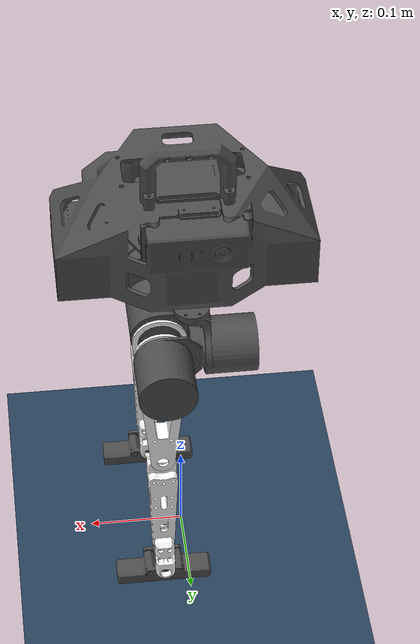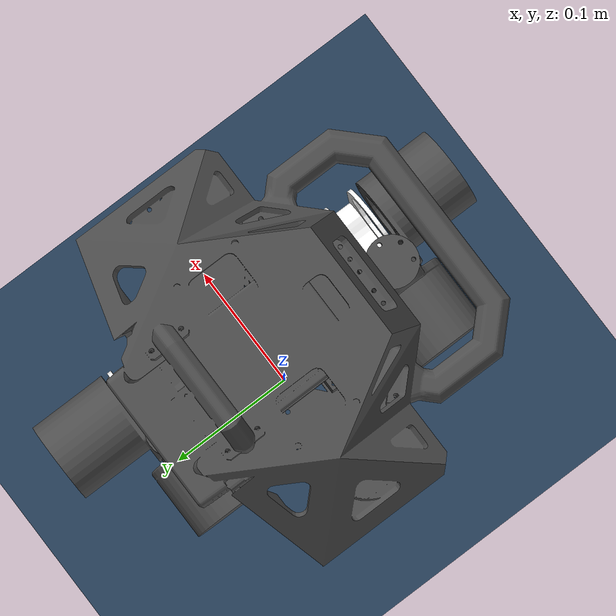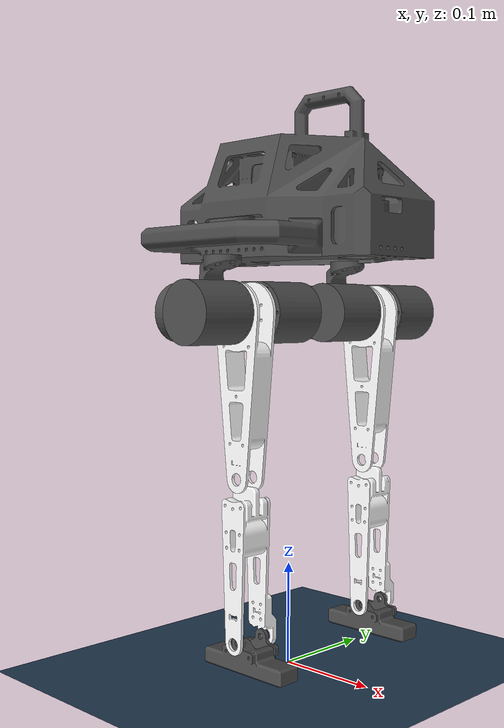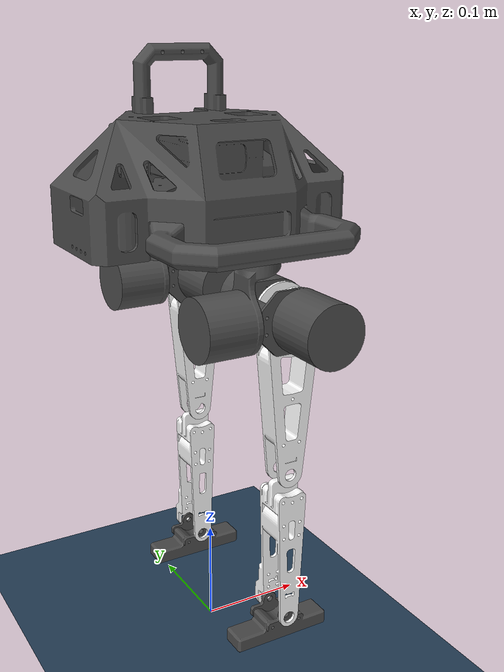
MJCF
<mujoco model="humanoid scene">
  <include file="humanoid.xml"/>

  <statistic center="0 0 1" extent="1.8"/>

  <visual>
    <headlight diffuse="0.6 0.6 0.6" ambient="0.3 0.3 0.3" specular="0 0 0"/>
    <rgba haze="0.15 0.25 0.35 1"/>
    <global azimuth="150" elevation="-20"/>
  </visual>

  <asset>
    <texture type="skybox" builtin="gradient" rgb1="0.3 0.5 0.7" rgb2="0 0 0" width="512" height="3072"/>
    <texture type="2d" name="groundplane" builtin="checker" mark="edge" rgb1="0.2 0.3 0.4" rgb2="0.1 0.2 0.3"
      markrgb="0.8 0.8 0.8" width="300" height="300"/>
    <material name="groundplane" texture="groundplane" texuniform="true" texrepeat="5 5" reflectance="0.2"/>
  </asset>

  <worldbody>
    <light pos="0 0 3" dir="0 0 -1" directional="false"/>
    <geom name="floor" size="0 0 .125" type="plane" material="groundplane" conaffinity="15" condim="3" friction='1 1 1' />
  </worldbody>
</mujoco>

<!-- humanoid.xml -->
<mujoco model="urdf_export.SLDASM">
  <compiler angle="radian"/>
  <option timestep="0.0002"/>
  <extension>
    <plugin plugin="mujoco.pid">
      <instance name="4340">
        <config key="kp" value="60.0"/>
        <config key="ki" value="0"/>
        <config key="kd" value="1.0"/>
      </instance>
      <instance name="4310">
        <config key="kp" value="50.0"/>
        <config key="ki" value="0"/>
        <config key="kd" value="0.5"/>
      </instance>
      <instance name="2006">
        <config key="kp" value="0.0"/>
        <config key="ki" value="0.0"/>
        <config key="kd" value="0.0"/>
      </instance>
    </plugin>
  </extension>
  <asset>
    <mesh name="base_link" file="base_link.STL"/>
    <mesh name="left_hip_yaw_link" file="left_hip_yaw_link.STL"/>
    <mesh name="left_hip_roll_link" file="left_hip_roll_link.STL"/>
    <mesh name="left_hip_pitch_link" file="left_hip_pitch_link.STL"/>
    <mesh name="left_knee_link" file="left_knee_link.STL"/>
    <mesh name="left_ankle_link" file="left_ankle_link.STL"/>
    <mesh name="right_hip_yaw_link" file="right_hip_yaw_link.STL"/>
    <mesh name="right_hip_roll_link" file="right_hip_roll_link.STL"/>
    <mesh name="right_hip_pitch_link" file="right_hip_pitch_link.STL"/>
    <mesh name="right_knee_link" file="right_knee_link.STL"/>
    <mesh name="right_ankle_link" file="right_ankle_link.STL"/>
  </asset>
  <actuator>
    <plugin joint="left_hip_yaw_joint" plugin="mujoco.pid" instance="4310"/>
    <plugin joint="left_hip_roll_joint" plugin="mujoco.pid" instance="4310"/>
    <plugin joint="left_hip_pitch_joint" plugin="mujoco.pid" instance="4340"/>
    <plugin joint="left_knee_joint" plugin="mujoco.pid" instance="4340"/>
    <plugin joint="right_hip_yaw_joint" plugin="mujoco.pid" instance="4310"/>
    <plugin joint="right_hip_roll_joint" plugin="mujoco.pid" instance="4310"/>
    <plugin joint="right_hip_pitch_joint" plugin="mujoco.pid" instance="4340"/>
    <plugin joint="right_knee_joint" plugin="mujoco.pid" instance="4340"/>
    <plugin joint="left_ankle_joint" plugin="mujoco.pid" instance="2006"/>
    <plugin joint="right_ankle_joint" plugin="mujoco.pid" instance="2006"/>
  </actuator>
  <worldbody>
    <body name='base_link' pos='0 0 0.4' euler='-0 0 -0'>
      <geom type="mesh" rgba="0.298039 0.298039 0.298039 1" mesh="base_link"/>
      <joint type='free' limited='false'/>
      <body name="left_hip_yaw_link" pos="0 0.0875 0">
        <inertial pos="-0.0379459 -2.06979e-09 -0.0497401" quat="0.997585 0 0.0694572 0" mass="0.324733" diaginertia="0.000141917 0.000129081 0.000116723"/>
        <joint name="left_hip_yaw_joint" pos="0 0 0" axis="0 0 -1" range="-3.14 3.14"/>
        <geom type="mesh" rgba="0.298039 0.298039 0.298039 1" mesh="left_hip_yaw_link"/>
        <body name="left_hip_roll_link" pos="-0.015 0 -0.051862">
          <inertial pos="0.0430697 0 0" quat="0.5 0.5 -0.5 0.5" mass="0.740919" diaginertia="0.000310508 0.000309702 0.000301114"/>
          <joint name="left_hip_roll_joint" pos="0 0 0" axis="1 0 0" range="-0.5 0.5"/>
          <geom type="mesh" rgba="0.298039 0.298039 0.298039 1" mesh="left_hip_roll_link"/>
          <body name="left_hip_pitch_link" pos="0.0445 0.0175 0">
            <inertial pos="0 -0.0162028 -0.0655249" quat="0.707107 1.07685e-05 -1.07685e-05 0.707107" mass="0.112567" diaginertia="0.000231097 0.000210388 2.32687e-05"/>
            <joint name="left_hip_pitch_joint" pos="0 0 0" axis="0 -1 0" range="-1.57 1.57"/>
            <geom type="mesh" rgba="1 1 1 1" mesh="left_hip_pitch_link"/>
            <body name="left_knee_link" pos="0 -0.0215 -0.15">
              <inertial pos="-6.78779e-07 0.0075962 -0.0679927" quat="0.70712 0.00190937 -0.00192493 0.707089" mass="0.0789763" diaginertia="5.55012e-05 5.30824e-05 7.09718e-06"/>
              <joint name="left_knee_joint" pos="0 0 0" axis="0 1 0" range="-1.57 1.57"/>
              <geom type="mesh" rgba="1 1 1 1" mesh="left_knee_link"/>
              <body name="left_ankle_link" pos="0 0.033 -0.15">
                <inertial pos="1.1782e-05 -0.0229687 -0.0191735" quat="0 0.707003 0 0.707211" mass="0.0639911" diaginertia="4.42548e-05 4.3474e-05 4.85594e-06"/>
                <joint name="left_ankle_joint" pos="0 0 0" axis="0 1 0" range="-1.57 1.57"/>
                <geom type="mesh" rgba="0.298039 0.298039 0.298039 1" mesh="left_ankle_link"/>
              </body>
            </body>
          </body>
        </body>
      </body>
      <body name="right_hip_yaw_link" pos="0 -0.0875 0">
        <inertial pos="-0.0379459 -2.06979e-09 -0.0497401" quat="0.997585 0 0.0694572 0" mass="0.324733" diaginertia="0.000141917 0.000129081 0.000116723"/>
        <joint name="right_hip_yaw_joint" pos="0 0 0" axis="0 0 -1" range="-3.14 3.14"/>
        <geom type="mesh" rgba="0.298039 0.298039 0.298039 1" mesh="right_hip_yaw_link"/>
        <body name="right_hip_roll_link" pos="-0.015 0 -0.051862">
          <inertial pos="0.0430697 0 0" quat="0.5 0.5 -0.5 0.5" mass="0.740919" diaginertia="0.000310508 0.000309702 0.000301114"/>
          <joint name="right_hip_roll_joint" pos="0 0 0" axis="1 0 0" range="-0.5 0.5"/>
          <geom type="mesh" rgba="0.298039 0.298039 0.298039 1" mesh="right_hip_roll_link"/>
          <body name="right_hip_pitch_link" pos="0.0445 0.0175 0">
            <inertial pos="0 -0.0162028 -0.0655249" quat="0.707107 1.07685e-05 -1.07685e-05 0.707107" mass="0.112567" diaginertia="0.000231097 0.000210388 2.32687e-05"/>
            <joint name="right_hip_pitch_joint" pos="0 0 0" axis="0 -1 0" range="-1.57 1.57"/>
            <geom type="mesh" rgba="1 1 1 1" mesh="right_hip_pitch_link"/>
            <body name="right_knee_link" pos="0 -0.0215 -0.15">
              <inertial pos="-6.78779e-07 0.0075962 -0.0679927" quat="0.70712 0.00190937 -0.00192493 0.707089" mass="0.0789763" diaginertia="5.55012e-05 5.30824e-05 7.09718e-06"/>
              <joint name="right_knee_joint" pos="0 0 0" axis="0 1 0" range="-1.57 1.57"/>
              <geom type="mesh" rgba="1 1 1 1" mesh="right_knee_link"/>
              <body name="right_ankle_link" pos="0 0.033 -0.15">
                <inertial pos="1.1782e-05 -0.0229687 -0.0191735" quat="0 0.707003 0 0.707211" mass="0.0639911" diaginertia="4.42548e-05 4.3474e-05 4.85594e-06"/>
                <joint name="right_ankle_joint" pos="0 0 0" axis="0 1 0" range="-1.57 1.57"/>
                <geom type="mesh" rgba="0.298039 0.298039 0.298039 1" mesh="right_ankle_link"/>
              </body>
            </body>
          </body>
        </body>
      </body>
    </body>
  </worldbody>
</mujoco>
